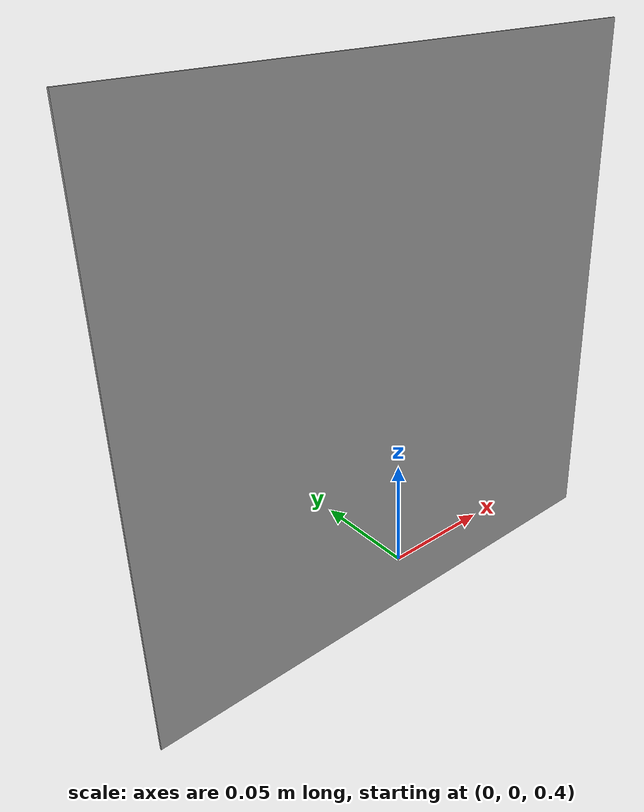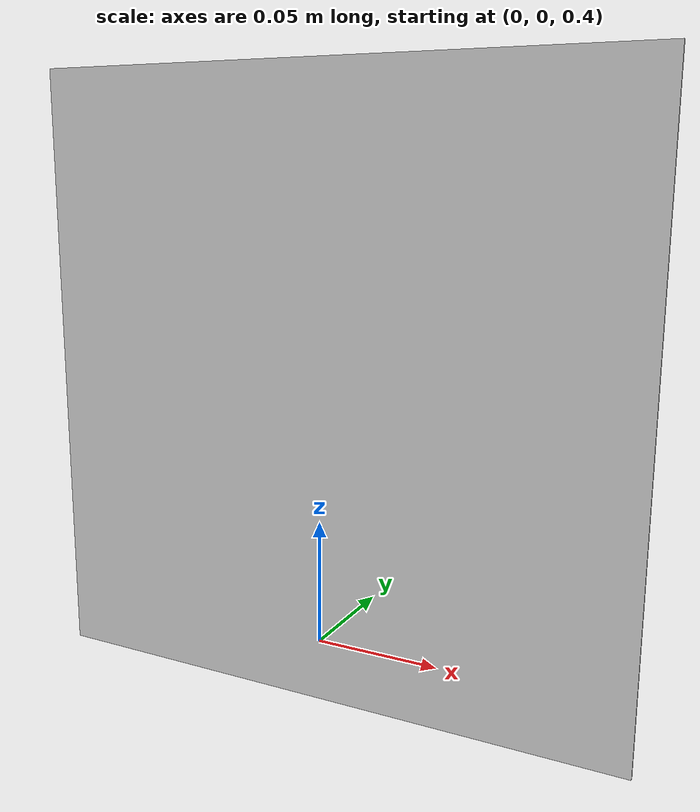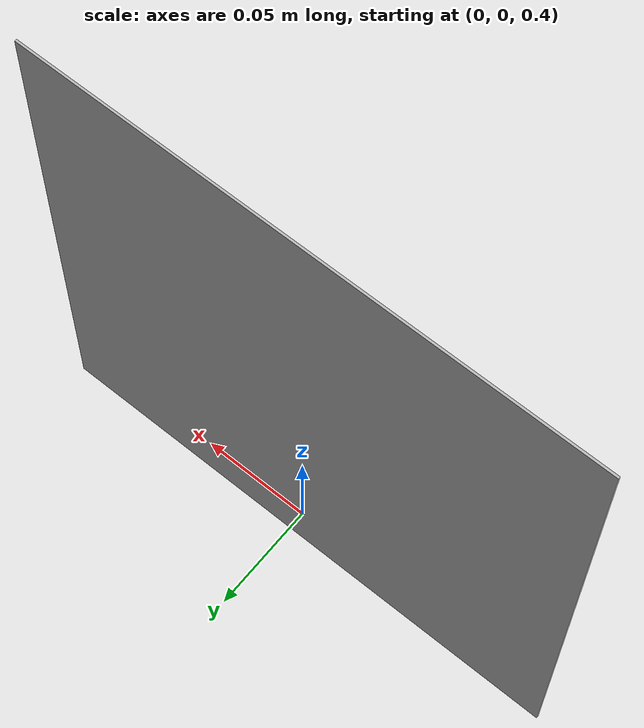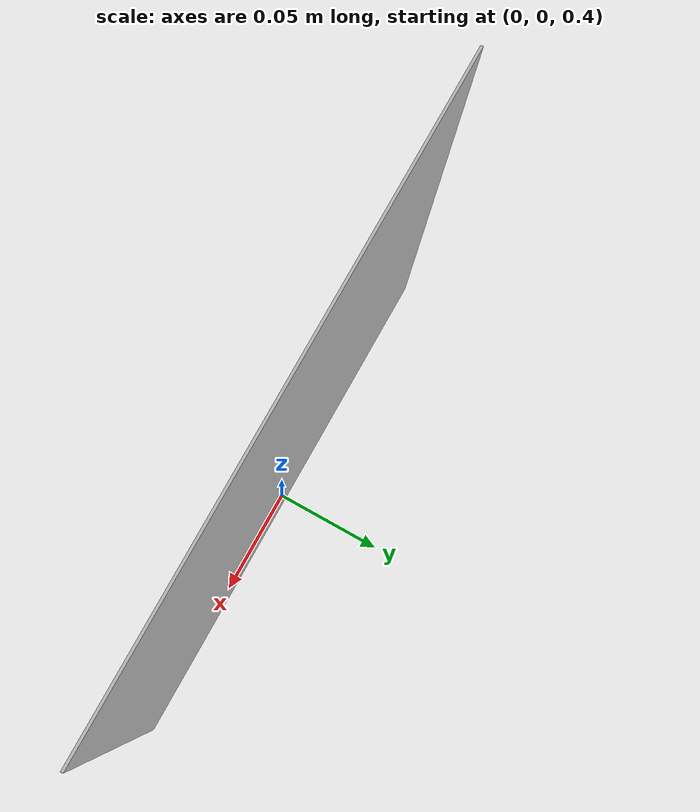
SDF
<?xml version='1.0'?>
<sdf version="1.4">
<model name="my_model">
  <pose>0 0 0.5 0 0 0</pose>
  <static>true</static>
    <link name="link">
      <inertial>
        <mass>1.0</mass>
        <inertia> <!-- interias are tricky to compute -->
          <!-- http://answers.gazebosim.org/question/4372/the-inertia-matrix-explained/ -->
          <ixx>0.083</ixx>       <!-- for a box: ixx = 0.083 * mass * (y*y + z*z) -->
          <ixy>0.0</ixy>         <!-- for a box: ixy = 0 -->
          <ixz>0.0</ixz>         <!-- for a box: ixz = 0 -->
          <iyy>0.083</iyy>       <!-- for a box: iyy = 0.083 * mass * (x*x + z*z) -->
          <iyz>0.0</iyz>         <!-- for a box: iyz = 0 -->
          <izz>0.083</izz>       <!-- for a box: izz = 0.083 * mass * (x*x + y*y) -->
        </inertia>
      </inertial>
      <collision name="collision">
        <geometry>
          <box>
            <size>0.25 0.001 0.25</size>
          </box>
        </geometry>
      </collision>
      <visual name="visual">
        <geometry>
          <box>
            <size>0.25 0.001 0.25</size>
          </box>
        </geometry>
        <material>
          <script>
            <uri>model://aruco_marker_4/materials/scripts</uri>
            <uri>model://aruco_marker_4/materials/textures</uri>
            <name>ar_marker_id4/Diffuse</name>
          </script>
        </material>
      </visual>
    </link>
  </model>
</sdf>
